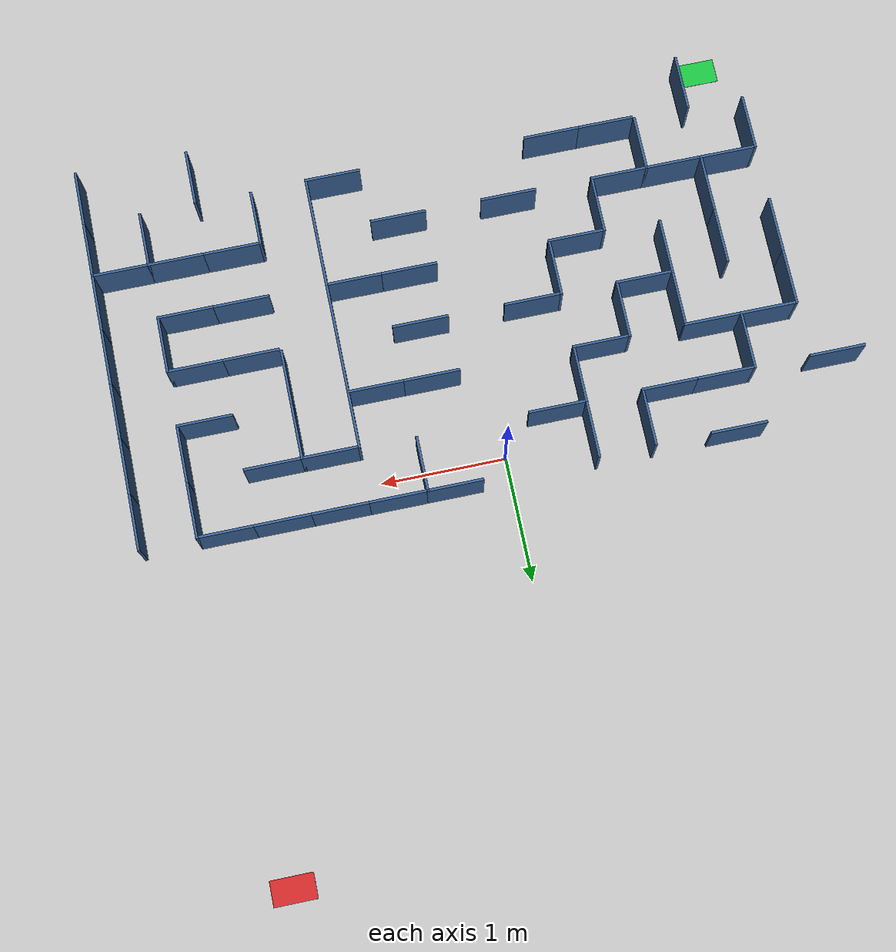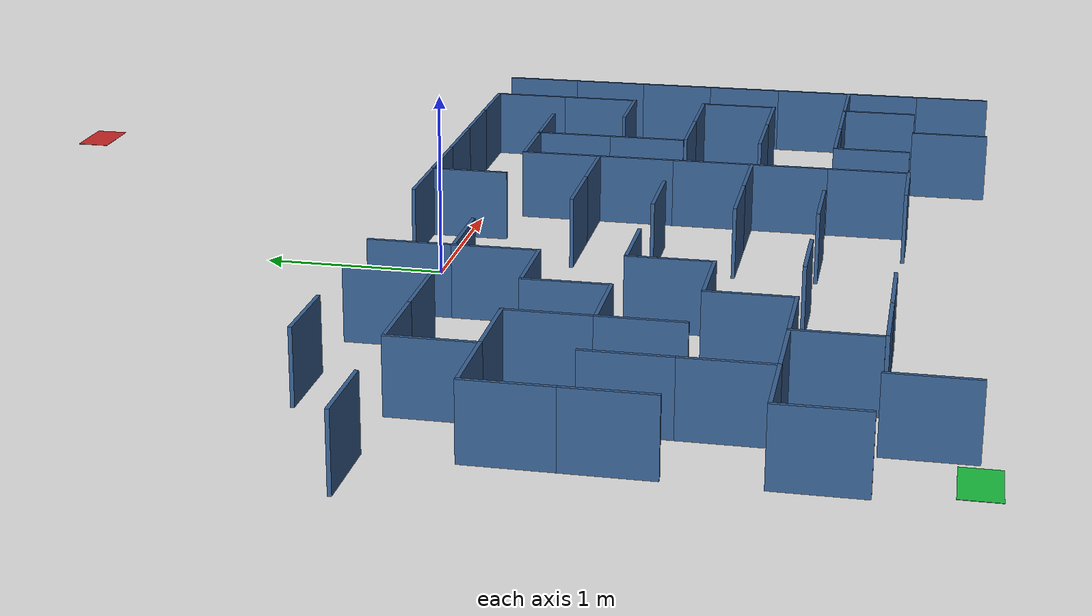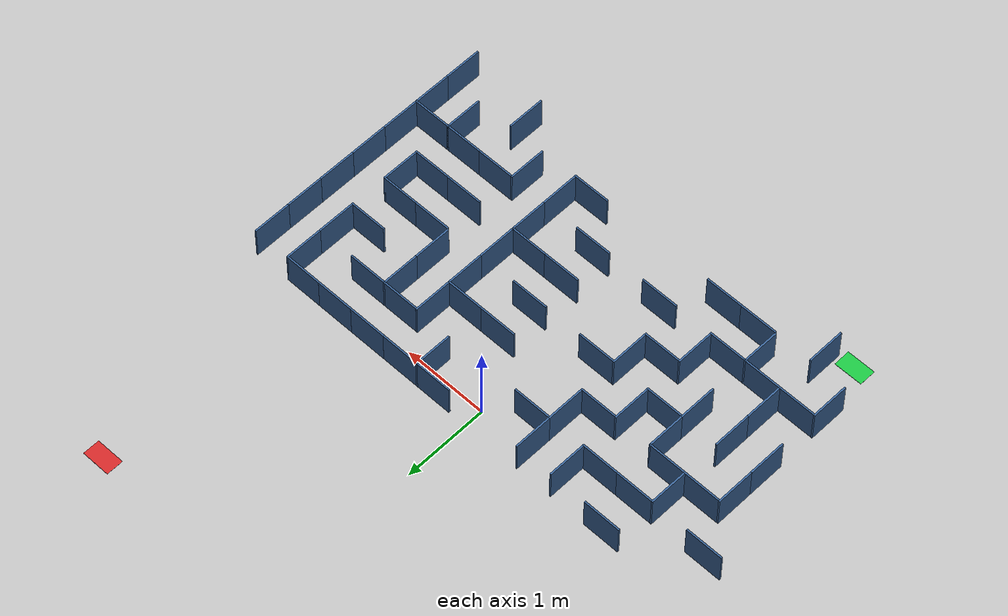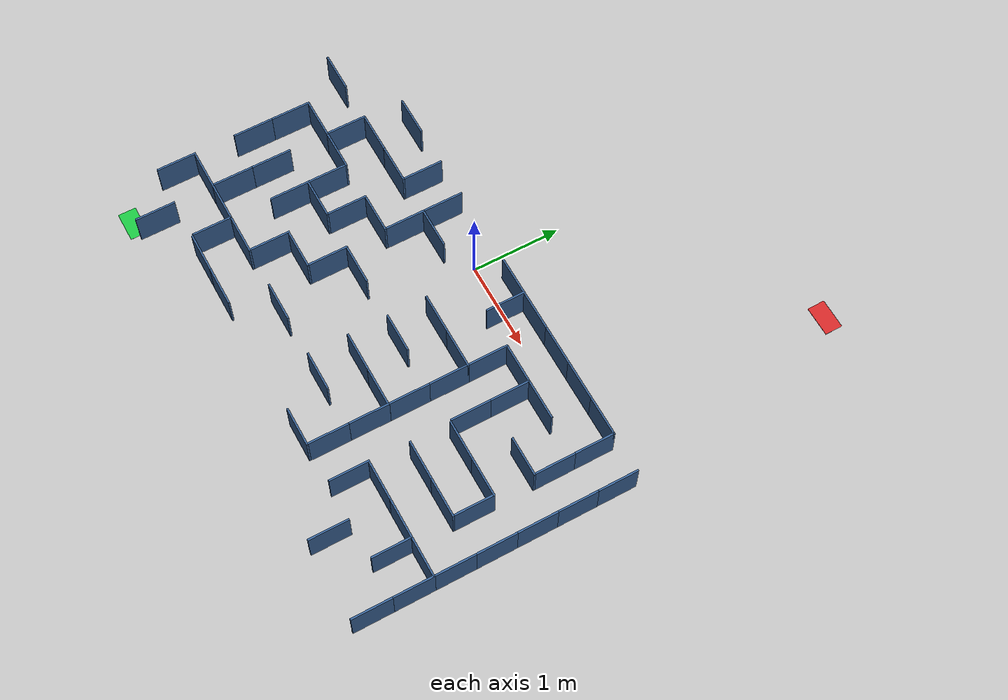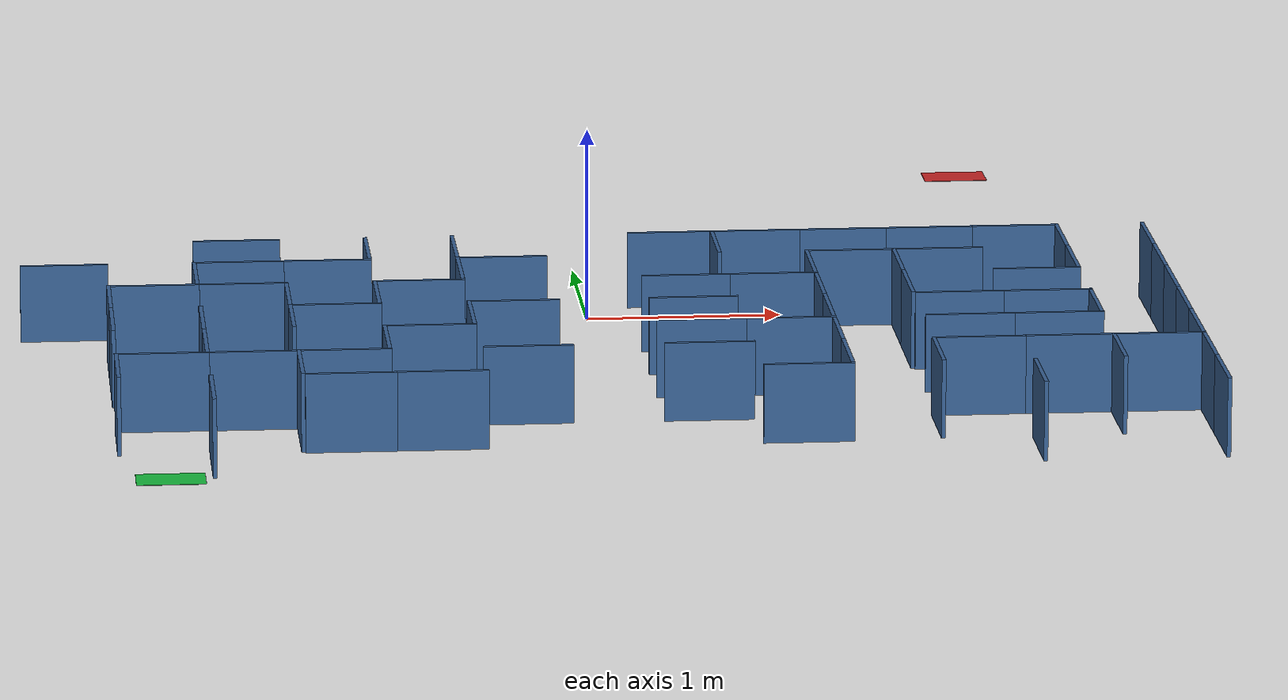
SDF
<sdf version="1.8">
 <world name="maze_world">
  <include><uri>https://fuel.gazebosim.org/1.0/OpenRobotics/models/Sun</uri></include>
  <model name="wall_h_6_2">
   <static>true</static>
   <link name="link">
    <pose>-1.8000000000000003 0.215 0.2 0 0 0</pose>
    <collision name="collision"><geometry><box><size>0.45 0.04 0.4</size></box></geometry></collision>
    <visual name="visual">
     <geometry><box><size>0.45 0.02 0.4</size></box></geometry>
     <material>
      <ambient>0.18 0.32 0.5 1</ambient>
      <diffuse>0.22 0.38 0.58 1</diffuse>
      <specular>0.15 0.15 0.15 1</specular>
     </material>
    </visual>
   </link>
  </model>
  <model name="wall_v_6_3">
   <static>true</static>
   <link name="link">
    <pose>-1.1350000000000002 0.0 0.2 0 0 0</pose>
    <collision name="collision"><geometry><box><size>0.04 0.45 0.4</size></box></geometry></collision>
    <visual name="visual">
     <geometry><box><size>0.02 0.45 0.4</size></box></geometry>
     <material>
      <ambient>0.18 0.32 0.5 1</ambient>
      <diffuse>0.22 0.38 0.58 1</diffuse>
      <specular>0.15 0.15 0.15 1</specular>
     </material>
    </visual>
   </link>
  </model>
  <model name="wall_v_6_4">
   <static>true</static>
   <link name="link">
    <pose>-0.6850000000000004 0.0 0.2 0 0 0</pose>
    <collision name="collision"><geometry><box><size>0.04 0.45 0.4</size></box></geometry></collision>
    <visual name="visual">
     <geometry><box><size>0.02 0.45 0.4</size></box></geometry>
     <material>
      <ambient>0.18 0.32 0.5 1</ambient>
      <diffuse>0.22 0.38 0.58 1</diffuse>
      <specular>0.15 0.15 0.15 1</specular>
     </material>
    </visual>
   </link>
  </model>
  <model name="wall_h_6_7">
   <static>true</static>
   <link name="link">
    <pose>0.44999999999999973 0.215 0.2 0 0 0</pose>
    <collision name="collision"><geometry><box><size>0.45 0.04 0.4</size></box></geometry></collision>
    <visual name="visual">
     <geometry><box><size>0.45 0.02 0.4</size></box></geometry>
     <material>
      <ambient>0.18 0.32 0.5 1</ambient>
      <diffuse>0.22 0.38 0.58 1</diffuse>
      <specular>0.15 0.15 0.15 1</specular>
     </material>
    </visual>
   </link>
  </model>
  <model name="wall_v_6_7">
   <static>true</static>
   <link name="link">
    <pose>0.6649999999999997 0.0 0.2 0 0 0</pose>
    <collision name="collision"><geometry><box><size>0.04 0.45 0.4</size></box></geometry></collision>
    <visual name="visual">
     <geometry><box><size>0.02 0.45 0.4</size></box></geometry>
     <material>
      <ambient>0.18 0.32 0.5 1</ambient>
      <diffuse>0.22 0.38 0.58 1</diffuse>
      <specular>0.15 0.15 0.15 1</specular>
     </material>
    </visual>
   </link>
  </model>
  <model name="wall_h_6_8">
   <static>true</static>
   <link name="link">
    <pose>0.8999999999999999 0.215 0.2 0 0 0</pose>
    <collision name="collision"><geometry><box><size>0.45 0.04 0.4</size></box></geometry></collision>
    <visual name="visual">
     <geometry><box><size>0.45 0.02 0.4</size></box></geometry>
     <material>
      <ambient>0.18 0.32 0.5 1</ambient>
      <diffuse>0.22 0.38 0.58 1</diffuse>
      <specular>0.15 0.15 0.15 1</specular>
     </material>
    </visual>
   </link>
  </model>
  <model name="wall_h_6_9">
   <static>true</static>
   <link name="link">
    <pose>1.35 0.215 0.2 0 0 0</pose>
    <collision name="collision"><geometry><box><size>0.45 0.04 0.4</size></box></geometry></collision>
    <visual name="visual">
     <geometry><box><size>0.45 0.02 0.4</size></box></geometry>
     <material>
      <ambient>0.18 0.32 0.5 1</ambient>
      <diffuse>0.22 0.38 0.58 1</diffuse>
      <specular>0.15 0.15 0.15 1</specular>
     </material>
    </visual>
   </link>
  </model>
  <model name="wall_h_6_10">
   <static>true</static>
   <link name="link">
    <pose>1.8000000000000003 0.215 0.2 0 0 0</pose>
    <collision name="collision"><geometry><box><size>0.45 0.04 0.4</size></box></geometry></collision>
    <visual name="visual">
     <geometry><box><size>0.45 0.02 0.4</size></box></geometry>
     <material>
      <ambient>0.18 0.32 0.5 1</ambient>
      <diffuse>0.22 0.38 0.58 1</diffuse>
      <specular>0.15 0.15 0.15 1</specular>
     </material>
    </visual>
   </link>
  </model>
  <model name="wall_h_6_11">
   <static>true</static>
   <link name="link">
    <pose>2.2499999999999996 0.215 0.2 0 0 0</pose>
    <collision name="collision"><geometry><box><size>0.45 0.04 0.4</size></box></geometry></collision>
    <visual name="visual">
     <geometry><box><size>0.45 0.02 0.4</size></box></geometry>
     <material>
      <ambient>0.18 0.32 0.5 1</ambient>
      <diffuse>0.22 0.38 0.58 1</diffuse>
      <specular>0.15 0.15 0.15 1</specular>
     </material>
    </visual>
   </link>
  </model>
  <model name="wall_v_6_11">
   <static>true</static>
   <link name="link">
    <pose>2.465 0.0 0.2 0 0 0</pose>
    <collision name="collision"><geometry><box><size>0.04 0.45 0.4</size></box></geometry></collision>
    <visual name="visual">
     <geometry><box><size>0.02 0.45 0.4</size></box></geometry>
     <material>
      <ambient>0.18 0.32 0.5 1</ambient>
      <diffuse>0.22 0.38 0.58 1</diffuse>
      <specular>0.15 0.15 0.15 1</specular>
     </material>
    </visual>
   </link>
  </model>
  <model name="wall_v_6_12">
   <static>true</static>
   <link name="link">
    <pose>2.915 0.0 0.2 0 0 0</pose>
    <collision name="collision"><geometry><box><size>0.04 0.45 0.4</size></box></geometry></collision>
    <visual name="visual">
     <geometry><box><size>0.02 0.45 0.4</size></box></geometry>
     <material>
      <ambient>0.18 0.32 0.5 1</ambient>
      <diffuse>0.22 0.38 0.58 1</diffuse>
      <specular>0.15 0.15 0.15 1</specular>
     </material>
    </visual>
   </link>
  </model>
  <model name="wall_h_7_0">
   <static>true</static>
   <link name="link">
    <pose>-2.7 -0.23499999999999974 0.2 0 0 0</pose>
    <collision name="collision"><geometry><box><size>0.45 0.04 0.4</size></box></geometry></collision>
    <visual name="visual">
     <geometry><box><size>0.45 0.02 0.4</size></box></geometry>
     <material>
      <ambient>0.18 0.32 0.5 1</ambient>
      <diffuse>0.22 0.38 0.58 1</diffuse>
      <specular>0.15 0.15 0.15 1</specular>
     </material>
    </visual>
   </link>
  </model>
  <model name="wall_v_7_1">
   <static>true</static>
   <link name="link">
    <pose>-2.0349999999999997 -0.44999999999999973 0.2 0 0 0</pose>
    <collision name="collision"><geometry><box><size>0.04 0.45 0.4</size></box></geometry></collision>
    <visual name="visual">
     <geometry><box><size>0.02 0.45 0.4</size></box></geometry>
     <material>
      <ambient>0.18 0.32 0.5 1</ambient>
      <diffuse>0.22 0.38 0.58 1</diffuse>
      <specular>0.15 0.15 0.15 1</specular>
     </material>
    </visual>
   </link>
  </model>
  <model name="wall_h_7_2">
   <static>true</static>
   <link name="link">
    <pose>-1.8000000000000003 -0.23499999999999974 0.2 0 0 0</pose>
    <collision name="collision"><geometry><box><size>0.45 0.04 0.4</size></box></geometry></collision>
    <visual name="visual">
     <geometry><box><size>0.45 0.02 0.4</size></box></geometry>
     <material>
      <ambient>0.18 0.32 0.5 1</ambient>
      <diffuse>0.22 0.38 0.58 1</diffuse>
      <specular>0.15 0.15 0.15 1</specular>
     </material>
    </visual>
   </link>
  </model>
  <model name="wall_h_7_3">
   <static>true</static>
   <link name="link">
    <pose>-1.3500000000000003 -0.23499999999999974 0.2 0 0 0</pose>
    <collision name="collision"><geometry><box><size>0.45 0.04 0.4</size></box></geometry></collision>
    <visual name="visual">
     <geometry><box><size>0.45 0.02 0.4</size></box></geometry>
     <material>
      <ambient>0.18 0.32 0.5 1</ambient>
      <diffuse>0.22 0.38 0.58 1</diffuse>
      <specular>0.15 0.15 0.15 1</specular>
     </material>
    </visual>
   </link>
  </model>
  <model name="wall_v_7_4">
   <static>true</static>
   <link name="link">
    <pose>-0.6850000000000004 -0.44999999999999973 0.2 0 0 0</pose>
    <collision name="collision"><geometry><box><size>0.04 0.45 0.4</size></box></geometry></collision>
    <visual name="visual">
     <geometry><box><size>0.02 0.45 0.4</size></box></geometry>
     <material>
      <ambient>0.18 0.32 0.5 1</ambient>
      <diffuse>0.22 0.38 0.58 1</diffuse>
      <specular>0.15 0.15 0.15 1</specular>
     </material>
    </visual>
   </link>
  </model>
  <model name="wall_h_7_5">
   <static>true</static>
   <link name="link">
    <pose>-0.4500000000000002 -0.23499999999999974 0.2 0 0 0</pose>
    <collision name="collision"><geometry><box><size>0.45 0.04 0.4</size></box></geometry></collision>
    <visual name="visual">
     <geometry><box><size>0.45 0.02 0.4</size></box></geometry>
     <material>
      <ambient>0.18 0.32 0.5 1</ambient>
      <diffuse>0.22 0.38 0.58 1</diffuse>
      <specular>0.15 0.15 0.15 1</specular>
     </material>
    </visual>
   </link>
  </model>
  <model name="wall_v_7_8">
   <static>true</static>
   <link name="link">
    <pose>1.115 -0.44999999999999973 0.2 0 0 0</pose>
    <collision name="collision"><geometry><box><size>0.04 0.45 0.4</size></box></geometry></collision>
    <visual name="visual">
     <geometry><box><size>0.02 0.45 0.4</size></box></geometry>
     <material>
      <ambient>0.18 0.32 0.5 1</ambient>
      <diffuse>0.22 0.38 0.58 1</diffuse>
      <specular>0.15 0.15 0.15 1</specular>
     </material>
    </visual>
   </link>
  </model>
  <model name="wall_h_7_9">
   <static>true</static>
   <link name="link">
    <pose>1.35 -0.23499999999999974 0.2 0 0 0</pose>
    <collision name="collision"><geometry><box><size>0.45 0.04 0.4</size></box></geometry></collision>
    <visual name="visual">
     <geometry><box><size>0.45 0.02 0.4</size></box></geometry>
     <material>
      <ambient>0.18 0.32 0.5 1</ambient>
      <diffuse>0.22 0.38 0.58 1</diffuse>
      <specular>0.15 0.15 0.15 1</specular>
     </material>
    </visual>
   </link>
  </model>
  <model name="wall_v_7_9">
   <static>true</static>
   <link name="link">
    <pose>1.5650000000000002 -0.44999999999999973 0.2 0 0 0</pose>
    <collision name="collision"><geometry><box><size>0.04 0.45 0.4</size></box></geometry></collision>
    <visual name="visual">
     <geometry><box><size>0.02 0.45 0.4</size></box></geometry>
     <material>
      <ambient>0.18 0.32 0.5 1</ambient>
      <diffuse>0.22 0.38 0.58 1</diffuse>
      <specular>0.15 0.15 0.15 1</specular>
     </material>
    </visual>
   </link>
  </model>
  <model name="wall_h_7_10">
   <static>true</static>
   <link name="link">
    <pose>1.8000000000000003 -0.23499999999999974 0.2 0 0 0</pose>
    <collision name="collision"><geometry><box><size>0.45 0.04 0.4</size></box></geometry></collision>
    <visual name="visual">
     <geometry><box><size>0.45 0.02 0.4</size></box></geometry>
     <material>
      <ambient>0.18 0.32 0.5 1</ambient>
      <diffuse>0.22 0.38 0.58 1</diffuse>
      <specular>0.15 0.15 0.15 1</specular>
     </material>
    </visual>
   </link>
  </model>
  <model name="wall_v_7_11">
   <static>true</static>
   <link name="link">
    <pose>2.465 -0.44999999999999973 0.2 0 0 0</pose>
    <collision name="collision"><geometry><box><size>0.04 0.45 0.4</size></box></geometry></collision>
    <visual name="visual">
     <geometry><box><size>0.02 0.45 0.4</size></box></geometry>
     <material>
      <ambient>0.18 0.32 0.5 1</ambient>
      <diffuse>0.22 0.38 0.58 1</diffuse>
      <specular>0.15 0.15 0.15 1</specular>
     </material>
    </visual>
   </link>
  </model>
  <model name="wall_v_7_12">
   <static>true</static>
   <link name="link">
    <pose>2.915 -0.44999999999999973 0.2 0 0 0</pose>
    <collision name="collision"><geometry><box><size>0.04 0.45 0.4</size></box></geometry></collision>
    <visual name="visual">
     <geometry><box><size>0.02 0.45 0.4</size></box></geometry>
     <material>
      <ambient>0.18 0.32 0.5 1</ambient>
      <diffuse>0.22 0.38 0.58 1</diffuse>
      <specular>0.15 0.15 0.15 1</specular>
     </material>
    </visual>
   </link>
  </model>
  <model name="wall_v_8_0">
   <static>true</static>
   <link name="link">
    <pose>-2.485 -0.8999999999999999 0.2 0 0 0</pose>
    <collision name="collision"><geometry><box><size>0.04 0.45 0.4</size></box></geometry></collision>
    <visual name="visual">
     <geometry><box><size>0.02 0.45 0.4</size></box></geometry>
     <material>
      <ambient>0.18 0.32 0.5 1</ambient>
      <diffuse>0.22 0.38 0.58 1</diffuse>
      <specular>0.15 0.15 0.15 1</specular>
     </material>
    </visual>
   </link>
  </model>
  <model name="wall_h_8_1">
   <static>true</static>
   <link name="link">
    <pose>-2.25 -0.6849999999999999 0.2 0 0 0</pose>
    <collision name="collision"><geometry><box><size>0.45 0.04 0.4</size></box></geometry></collision>
    <visual name="visual">
     <geometry><box><size>0.45 0.02 0.4</size></box></geometry>
     <material>
      <ambient>0.18 0.32 0.5 1</ambient>
      <diffuse>0.22 0.38 0.58 1</diffuse>
      <specular>0.15 0.15 0.15 1</specular>
     </material>
    </visual>
   </link>
  </model>
  <model name="wall_h_8_2">
   <static>true</static>
   <link name="link">
    <pose>-1.8000000000000003 -0.6849999999999999 0.2 0 0 0</pose>
    <collision name="collision"><geometry><box><size>0.45 0.04 0.4</size></box></geometry></collision>
    <visual name="visual">
     <geometry><box><size>0.45 0.02 0.4</size></box></geometry>
     <material>
      <ambient>0.18 0.32 0.5 1</ambient>
      <diffuse>0.22 0.38 0.58 1</diffuse>
      <specular>0.15 0.15 0.15 1</specular>
     </material>
    </visual>
   </link>
  </model>
  <model name="wall_v_8_2">
   <static>true</static>
   <link name="link">
    <pose>-1.5850000000000002 -0.8999999999999999 0.2 0 0 0</pose>
    <collision name="collision"><geometry><box><size>0.04 0.45 0.4</size></box></geometry></collision>
    <visual name="visual">
     <geometry><box><size>0.02 0.45 0.4</size></box></geometry>
     <material>
      <ambient>0.18 0.32 0.5 1</ambient>
      <diffuse>0.22 0.38 0.58 1</diffuse>
      <specular>0.15 0.15 0.15 1</specular>
     </material>
    </visual>
   </link>
  </model>
  <model name="wall_v_8_3">
   <static>true</static>
   <link name="link">
    <pose>-1.1350000000000002 -0.8999999999999999 0.2 0 0 0</pose>
    <collision name="collision"><geometry><box><size>0.04 0.45 0.4</size></box></geometry></collision>
    <visual name="visual">
     <geometry><box><size>0.02 0.45 0.4</size></box></geometry>
     <material>
      <ambient>0.18 0.32 0.5 1</ambient>
      <diffuse>0.22 0.38 0.58 1</diffuse>
      <specular>0.15 0.15 0.15 1</specular>
     </material>
    </visual>
   </link>
  </model>
  <model name="wall_h_8_4">
   <static>true</static>
   <link name="link">
    <pose>-0.9000000000000004 -0.6849999999999999 0.2 0 0 0</pose>
    <collision name="collision"><geometry><box><size>0.45 0.04 0.4</size></box></geometry></collision>
    <visual name="visual">
     <geometry><box><size>0.45 0.02 0.4</size></box></geometry>
     <material>
      <ambient>0.18 0.32 0.5 1</ambient>
      <diffuse>0.22 0.38 0.58 1</diffuse>
      <specular>0.15 0.15 0.15 1</specular>
     </material>
    </visual>
   </link>
  </model>
  <model name="wall_h_8_7">
   <static>true</static>
   <link name="link">
    <pose>0.44999999999999973 -0.6849999999999999 0.2 0 0 0</pose>
    <collision name="collision"><geometry><box><size>0.45 0.04 0.4</size></box></geometry></collision>
    <visual name="visual">
     <geometry><box><size>0.45 0.02 0.4</size></box></geometry>
     <material>
      <ambient>0.18 0.32 0.5 1</ambient>
      <diffuse>0.22 0.38 0.58 1</diffuse>
      <specular>0.15 0.15 0.15 1</specular>
     </material>
    </visual>
   </link>
  </model>
  <model name="wall_h_8_8">
   <static>true</static>
   <link name="link">
    <pose>0.8999999999999999 -0.6849999999999999 0.2 0 0 0</pose>
    <collision name="collision"><geometry><box><size>0.45 0.04 0.4</size></box></geometry></collision>
    <visual name="visual">
     <geometry><box><size>0.45 0.02 0.4</size></box></geometry>
     <material>
      <ambient>0.18 0.32 0.5 1</ambient>
      <diffuse>0.22 0.38 0.58 1</diffuse>
      <specular>0.15 0.15 0.15 1</specular>
     </material>
    </visual>
   </link>
  </model>
  <model name="wall_v_8_8">
   <static>true</static>
   <link name="link">
    <pose>1.115 -0.8999999999999999 0.2 0 0 0</pose>
    <collision name="collision"><geometry><box><size>0.04 0.45 0.4</size></box></geometry></collision>
    <visual name="visual">
     <geometry><box><size>0.02 0.45 0.4</size></box></geometry>
     <material>
      <ambient>0.18 0.32 0.5 1</ambient>
      <diffuse>0.22 0.38 0.58 1</diffuse>
      <specular>0.15 0.15 0.15 1</specular>
     </material>
    </visual>
   </link>
  </model>
  <model name="wall_v_8_9">
   <static>true</static>
   <link name="link">
    <pose>1.5650000000000002 -0.8999999999999999 0.2 0 0 0</pose>
    <collision name="collision"><geometry><box><size>0.04 0.45 0.4</size></box></geometry></collision>
    <visual name="visual">
     <geometry><box><size>0.02 0.45 0.4</size></box></geometry>
     <material>
      <ambient>0.18 0.32 0.5 1</ambient>
      <diffuse>0.22 0.38 0.58 1</diffuse>
      <specular>0.15 0.15 0.15 1</specular>
     </material>
    </visual>
   </link>
  </model>
  <model name="wall_h_8_11">
   <static>true</static>
   <link name="link">
    <pose>2.2499999999999996 -0.6849999999999999 0.2 0 0 0</pose>
    <collision name="collision"><geometry><box><size>0.45 0.04 0.4</size></box></geometry></collision>
    <visual name="visual">
     <geometry><box><size>0.45 0.02 0.4</size></box></geometry>
     <material>
      <ambient>0.18 0.32 0.5 1</ambient>
      <diffuse>0.22 0.38 0.58 1</diffuse>
      <specular>0.15 0.15 0.15 1</specular>
     </material>
    </visual>
   </link>
  </model>
  <model name="wall_v_8_12">
   <static>true</static>
   <link name="link">
    <pose>2.915 -0.8999999999999999 0.2 0 0 0</pose>
    <collision name="collision"><geometry><box><size>0.04 0.45 0.4</size></box></geometry></collision>
    <visual name="visual">
     <geometry><box><size>0.02 0.45 0.4</size></box></geometry>
     <material>
      <ambient>0.18 0.32 0.5 1</ambient>
      <diffuse>0.22 0.38 0.58 1</diffuse>
      <specular>0.15 0.15 0.15 1</specular>
     </material>
    </visual>
   </link>
  </model>
  <model name="wall_v_9_0">
   <static>true</static>
   <link name="link">
    <pose>-2.485 -1.35 0.2 0 0 0</pose>
    <collision name="collision"><geometry><box><size>0.04 0.45 0.4</size></box></geometry></collision>
    <visual name="visual">
     <geometry><box><size>0.02 0.45 0.4</size></box></geometry>
     <material>
      <ambient>0.18 0.32 0.5 1</ambient>
      <diffuse>0.22 0.38 0.58 1</diffuse>
      <specular>0.15 0.15 0.15 1</specular>
     </material>
    </visual>
   </link>
  </model>
  <model name="wall_v_9_1">
   <static>true</static>
   <link name="link">
    <pose>-2.0349999999999997 -1.35 0.2 0 0 0</pose>
    <collision name="collision"><geometry><box><size>0.04 0.45 0.4</size></box></geometry></collision>
    <visual name="visual">
     <geometry><box><size>0.02 0.45 0.4</size></box></geometry>
     <material>
      <ambient>0.18 0.32 0.5 1</ambient>
      <diffuse>0.22 0.38 0.58 1</diffuse>
      <specular>0.15 0.15 0.15 1</specular>
     </material>
    </visual>
   </link>
  </model>
  <model name="wall_v_9_2">
   <static>true</static>
   <link name="link">
    <pose>-1.5850000000000002 -1.35 0.2 0 0 0</pose>
    <collision name="collision"><geometry><box><size>0.04 0.45 0.4</size></box></geometry></collision>
    <visual name="visual">
     <geometry><box><size>0.02 0.45 0.4</size></box></geometry>
     <material>
      <ambient>0.18 0.32 0.5 1</ambient>
      <diffuse>0.22 0.38 0.58 1</diffuse>
      <specular>0.15 0.15 0.15 1</specular>
     </material>
    </visual>
   </link>
  </model>
  <model name="wall_h_9_3">
   <static>true</static>
   <link name="link">
    <pose>-1.3500000000000003 -1.135 0.2 0 0 0</pose>
    <collision name="collision"><geometry><box><size>0.45 0.04 0.4</size></box></geometry></collision>
    <visual name="visual">
     <geometry><box><size>0.45 0.02 0.4</size></box></geometry>
     <material>
      <ambient>0.18 0.32 0.5 1</ambient>
      <diffuse>0.22 0.38 0.58 1</diffuse>
      <specular>0.15 0.15 0.15 1</specular>
     </material>
    </visual>
   </link>
  </model>
  <model name="wall_v_9_4">
   <static>true</static>
   <link name="link">
    <pose>-0.6850000000000004 -1.35 0.2 0 0 0</pose>
    <collision name="collision"><geometry><box><size>0.04 0.45 0.4</size></box></geometry></collision>
    <visual name="visual">
     <geometry><box><size>0.02 0.45 0.4</size></box></geometry>
     <material>
      <ambient>0.18 0.32 0.5 1</ambient>
      <diffuse>0.22 0.38 0.58 1</diffuse>
      <specular>0.15 0.15 0.15 1</specular>
     </material>
    </visual>
   </link>
  </model>
  <model name="wall_h_9_5">
   <static>true</static>
   <link name="link">
    <pose>-0.4500000000000002 -1.135 0.2 0 0 0</pose>
    <collision name="collision"><geometry><box><size>0.45 0.04 0.4</size></box></geometry></collision>
    <visual name="visual">
     <geometry><box><size>0.45 0.02 0.4</size></box></geometry>
     <material>
      <ambient>0.18 0.32 0.5 1</ambient>
      <diffuse>0.22 0.38 0.58 1</diffuse>
      <specular>0.15 0.15 0.15 1</specular>
     </material>
    </visual>
   </link>
  </model>
  <model name="wall_h_9_7">
   <static>true</static>
   <link name="link">
    <pose>0.44999999999999973 -1.135 0.2 0 0 0</pose>
    <collision name="collision"><geometry><box><size>0.45 0.04 0.4</size></box></geometry></collision>
    <visual name="visual">
     <geometry><box><size>0.45 0.02 0.4</size></box></geometry>
     <material>
      <ambient>0.18 0.32 0.5 1</ambient>
      <diffuse>0.22 0.38 0.58 1</diffuse>
      <specular>0.15 0.15 0.15 1</specular>
     </material>
    </visual>
   </link>
  </model>
  <model name="wall_v_9_8">
   <static>true</static>
   <link name="link">
    <pose>1.115 -1.35 0.2 0 0 0</pose>
    <collision name="collision"><geometry><box><size>0.04 0.45 0.4</size></box></geometry></collision>
    <visual name="visual">
     <geometry><box><size>0.02 0.45 0.4</size></box></geometry>
     <material>
      <ambient>0.18 0.32 0.5 1</ambient>
      <diffuse>0.22 0.38 0.58 1</diffuse>
      <specular>0.15 0.15 0.15 1</specular>
     </material>
    </visual>
   </link>
  </model>
  <model name="wall_h_9_10">
   <static>true</static>
   <link name="link">
    <pose>1.8000000000000003 -1.135 0.2 0 0 0</pose>
    <collision name="collision"><geometry><box><size>0.45 0.04 0.4</size></box></geometry></collision>
    <visual name="visual">
     <geometry><box><size>0.45 0.02 0.4</size></box></geometry>
     <material>
      <ambient>0.18 0.32 0.5 1</ambient>
      <diffuse>0.22 0.38 0.58 1</diffuse>
      <specular>0.15 0.15 0.15 1</specular>
     </material>
    </visual>
   </link>
  </model>
  <model name="wall_h_9_11">
   <static>true</static>
   <link name="link">
    <pose>2.2499999999999996 -1.135 0.2 0 0 0</pose>
    <collision name="collision"><geometry><box><size>0.45 0.04 0.4</size></box></geometry></collision>
    <visual name="visual">
     <geometry><box><size>0.45 0.02 0.4</size></box></geometry>
     <material>
      <ambient>0.18 0.32 0.5 1</ambient>
      <diffuse>0.22 0.38 0.58 1</diffuse>
      <specular>0.15 0.15 0.15 1</specular>
     </material>
    </visual>
   </link>
  </model>
  <model name="wall_v_9_11">
   <static>true</static>
   <link name="link">
    <pose>2.465 -1.35 0.2 0 0 0</pose>
    <collision name="collision"><geometry><box><size>0.04 0.45 0.4</size></box></geometry></collision>
    <visual name="visual">
     <geometry><box><size>0.02 0.45 0.4</size></box></geometry>
     <material>
      <ambient>0.18 0.32 0.5 1</ambient>
      <diffuse>0.22 0.38 0.58 1</diffuse>
      <specular>0.15 0.15 0.15 1</specular>
     </material>
    </visual>
   </link>
  </model>
  <model name="wall_v_9_12">
   <static>true</static>
   <link name="link">
    <pose>2.915 -1.35 0.2 0 0 0</pose>
    <collision name="collision"><geometry><box><size>0.04 0.45 0.4</size></box></geometry></collision>
    <visual name="visual">
     <geometry><box><size>0.02 0.45 0.4</size></box></geometry>
     <material>
      <ambient>0.18 0.32 0.5 1</ambient>
      <diffuse>0.22 0.38 0.58 1</diffuse>
      <specular>0.15 0.15 0.15 1</specular>
     </material>
    </visual>
   </link>
  </model>
  <model name="wall_v_10_1">
   <static>true</static>
   <link name="link">
    <pose>-2.0349999999999997 -1.8000000000000003 0.2 0 0 0</pose>
    <collision name="collision"><geometry><box><size>0.04 0.45 0.4</size></box></geometry></collision>
    <visual name="visual">
     <geometry><box><size>0.02 0.45 0.4</size></box></geometry>
     <material>
      <ambient>0.18 0.32 0.5 1</ambient>
      <diffuse>0.22 0.38 0.58 1</diffuse>
      <specular>0.15 0.15 0.15 1</specular>
     </material>
    </visual>
   </link>
  </model>
  <model name="wall_v_10_3">
   <static>true</static>
   <link name="link">
    <pose>-1.1350000000000002 -1.8000000000000003 0.2 0 0 0</pose>
    <collision name="collision"><geometry><box><size>0.04 0.45 0.4</size></box></geometry></collision>
    <visual name="visual">
     <geometry><box><size>0.02 0.45 0.4</size></box></geometry>
     <material>
      <ambient>0.18 0.32 0.5 1</ambient>
      <diffuse>0.22 0.38 0.58 1</diffuse>
      <specular>0.15 0.15 0.15 1</specular>
     </material>
    </visual>
   </link>
  </model>
  <model name="wall_h_10_4">
   <static>true</static>
   <link name="link">
    <pose>-0.9000000000000004 -1.5850000000000002 0.2 0 0 0</pose>
    <collision name="collision"><geometry><box><size>0.45 0.04 0.4</size></box></geometry></collision>
    <visual name="visual">
     <geometry><box><size>0.45 0.02 0.4</size></box></geometry>
     <material>
      <ambient>0.18 0.32 0.5 1</ambient>
      <diffuse>0.22 0.38 0.58 1</diffuse>
      <specular>0.15 0.15 0.15 1</specular>
     </material>
    </visual>
   </link>
  </model>
  <model name="wall_h_10_7">
   <static>true</static>
   <link name="link">
    <pose>0.44999999999999973 -1.5850000000000002 0.2 0 0 0</pose>
    <collision name="collision"><geometry><box><size>0.45 0.04 0.4</size></box></geometry></collision>
    <visual name="visual">
     <geometry><box><size>0.45 0.02 0.4</size></box></geometry>
     <material>
      <ambient>0.18 0.32 0.5 1</ambient>
      <diffuse>0.22 0.38 0.58 1</diffuse>
      <specular>0.15 0.15 0.15 1</specular>
     </material>
    </visual>
   </link>
  </model>
  <model name="wall_h_10_8">
   <static>true</static>
   <link name="link">
    <pose>0.8999999999999999 -1.5850000000000002 0.2 0 0 0</pose>
    <collision name="collision"><geometry><box><size>0.45 0.04 0.4</size></box></geometry></collision>
    <visual name="visual">
     <geometry><box><size>0.45 0.02 0.4</size></box></geometry>
     <material>
      <ambient>0.18 0.32 0.5 1</ambient>
      <diffuse>0.22 0.38 0.58 1</diffuse>
      <specular>0.15 0.15 0.15 1</specular>
     </material>
    </visual>
   </link>
  </model>
  <model name="wall_v_10_8">
   <static>true</static>
   <link name="link">
    <pose>1.115 -1.8000000000000003 0.2 0 0 0</pose>
    <collision name="collision"><geometry><box><size>0.04 0.45 0.4</size></box></geometry></collision>
    <visual name="visual">
     <geometry><box><size>0.02 0.45 0.4</size></box></geometry>
     <material>
      <ambient>0.18 0.32 0.5 1</ambient>
      <diffuse>0.22 0.38 0.58 1</diffuse>
      <specular>0.15 0.15 0.15 1</specular>
     </material>
    </visual>
   </link>
  </model>
  <model name="wall_h_10_10">
   <static>true</static>
   <link name="link">
    <pose>1.8000000000000003 -1.5850000000000002 0.2 0 0 0</pose>
    <collision name="collision"><geometry><box><size>0.45 0.04 0.4</size></box></geometry></collision>
    <visual name="visual">
     <geometry><box><size>0.45 0.02 0.4</size></box></geometry>
     <material>
      <ambient>0.18 0.32 0.5 1</ambient>
      <diffuse>0.22 0.38 0.58 1</diffuse>
      <specular>0.15 0.15 0.15 1</specular>
     </material>
    </visual>
   </link>
  </model>
  <model name="wall_h_10_11">
   <static>true</static>
   <link name="link">
    <pose>2.2499999999999996 -1.5850000000000002 0.2 0 0 0</pose>
    <collision name="collision"><geometry><box><size>0.45 0.04 0.4</size></box></geometry></collision>
    <visual name="visual">
     <geometry><box><size>0.45 0.02 0.4</size></box></geometry>
     <material>
      <ambient>0.18 0.32 0.5 1</ambient>
      <diffuse>0.22 0.38 0.58 1</diffuse>
      <specular>0.15 0.15 0.15 1</specular>
     </material>
    </visual>
   </link>
  </model>
  <model name="wall_v_10_12">
   <static>true</static>
   <link name="link">
    <pose>2.915 -1.8000000000000003 0.2 0 0 0</pose>
    <collision name="collision"><geometry><box><size>0.04 0.45 0.4</size></box></geometry></collision>
    <visual name="visual">
     <geometry><box><size>0.02 0.45 0.4</size></box></geometry>
     <material>
      <ambient>0.18 0.32 0.5 1</ambient>
      <diffuse>0.22 0.38 0.58 1</diffuse>
      <specular>0.15 0.15 0.15 1</specular>
     </material>
    </visual>
   </link>
  </model>
  <model name="wall_v_11_0">
   <static>true</static>
   <link name="link">
    <pose>-2.485 -2.2499999999999996 0.2 0 0 0</pose>
    <collision name="collision"><geometry><box><size>0.04 0.45 0.4</size></box></geometry></collision>
    <visual name="visual">
     <geometry><box><size>0.02 0.45 0.4</size></box></geometry>
     <material>
      <ambient>0.18 0.32 0.5 1</ambient>
      <diffuse>0.22 0.38 0.58 1</diffuse>
      <specular>0.15 0.15 0.15 1</specular>
     </material>
    </visual>
   </link>
  </model>
  <model name="wall_h_11_1">
   <static>true</static>
   <link name="link">
    <pose>-2.25 -2.0349999999999993 0.2 0 0 0</pose>
    <collision name="collision"><geometry><box><size>0.45 0.04 0.4</size></box></geometry></collision>
    <visual name="visual">
     <geometry><box><size>0.45 0.02 0.4</size></box></geometry>
     <material>
      <ambient>0.18 0.32 0.5 1</ambient>
      <diffuse>0.22 0.38 0.58 1</diffuse>
      <specular>0.15 0.15 0.15 1</specular>
     </material>
    </visual>
   </link>
  </model>
  <model name="wall_h_11_2">
   <static>true</static>
   <link name="link">
    <pose>-1.8000000000000003 -2.0349999999999993 0.2 0 0 0</pose>
    <collision name="collision"><geometry><box><size>0.45 0.04 0.4</size></box></geometry></collision>
    <visual name="visual">
     <geometry><box><size>0.45 0.02 0.4</size></box></geometry>
     <material>
      <ambient>0.18 0.32 0.5 1</ambient>
      <diffuse>0.22 0.38 0.58 1</diffuse>
      <specular>0.15 0.15 0.15 1</specular>
     </material>
    </visual>
   </link>
  </model>
  <model name="wall_v_11_2">
   <static>true</static>
   <link name="link">
    <pose>-1.5850000000000002 -2.2499999999999996 0.2 0 0 0</pose>
    <collision name="collision"><geometry><box><size>0.04 0.45 0.4</size></box></geometry></collision>
    <visual name="visual">
     <geometry><box><size>0.02 0.45 0.4</size></box></geometry>
     <material>
      <ambient>0.18 0.32 0.5 1</ambient>
      <diffuse>0.22 0.38 0.58 1</diffuse>
      <specular>0.15 0.15 0.15 1</specular>
     </material>
    </visual>
   </link>
  </model>
  <model name="wall_h_11_3">
   <static>true</static>
   <link name="link">
    <pose>-1.3500000000000003 -2.0349999999999993 0.2 0 0 0</pose>
    <collision name="collision"><geometry><box><size>0.45 0.04 0.4</size></box></geometry></collision>
    <visual name="visual">
     <geometry><box><size>0.45 0.02 0.4</size></box></geometry>
     <material>
      <ambient>0.18 0.32 0.5 1</ambient>
      <diffuse>0.22 0.38 0.58 1</diffuse>
      <specular>0.15 0.15 0.15 1</specular>
     </material>
    </visual>
   </link>
  </model>
  <model name="wall_h_11_5">
   <static>true</static>
   <link name="link">
    <pose>-0.4500000000000002 -2.0349999999999993 0.2 0 0 0</pose>
    <collision name="collision"><geometry><box><size>0.45 0.04 0.4</size></box></geometry></collision>
    <visual name="visual">
     <geometry><box><size>0.45 0.02 0.4</size></box></geometry>
     <material>
      <ambient>0.18 0.32 0.5 1</ambient>
      <diffuse>0.22 0.38 0.58 1</diffuse>
      <specular>0.15 0.15 0.15 1</specular>
     </material>
    </visual>
   </link>
  </model>
  <model name="wall_h_11_7">
   <static>true</static>
   <link name="link">
    <pose>0.44999999999999973 -2.0349999999999993 0.2 0 0 0</pose>
    <collision name="collision"><geometry><box><size>0.45 0.04 0.4</size></box></geometry></collision>
    <visual name="visual">
     <geometry><box><size>0.45 0.02 0.4</size></box></geometry>
     <material>
      <ambient>0.18 0.32 0.5 1</ambient>
      <diffuse>0.22 0.38 0.58 1</diffuse>
      <specular>0.15 0.15 0.15 1</specular>
     </material>
    </visual>
   </link>
  </model>
  <model name="wall_v_11_8">
   <static>true</static>
   <link name="link">
    <pose>1.115 -2.2499999999999996 0.2 0 0 0</pose>
    <collision name="collision"><geometry><box><size>0.04 0.45 0.4</size></box></geometry></collision>
    <visual name="visual">
     <geometry><box><size>0.02 0.45 0.4</size></box></geometry>
     <material>
      <ambient>0.18 0.32 0.5 1</ambient>
      <diffuse>0.22 0.38 0.58 1</diffuse>
      <specular>0.15 0.15 0.15 1</specular>
     </material>
    </visual>
   </link>
  </model>
  <model name="wall_v_11_9">
   <static>true</static>
   <link name="link">
    <pose>1.5650000000000002 -2.2499999999999996 0.2 0 0 0</pose>
    <collision name="collision"><geometry><box><size>0.04 0.45 0.4</size></box></geometry></collision>
    <visual name="visual">
     <geometry><box><size>0.02 0.45 0.4</size></box></geometry>
     <material>
      <ambient>0.18 0.32 0.5 1</ambient>
      <diffuse>0.22 0.38 0.58 1</diffuse>
      <specular>0.15 0.15 0.15 1</specular>
     </material>
    </visual>
   </link>
  </model>
  <model name="wall_h_11_10">
   <static>true</static>
   <link name="link">
    <pose>1.8000000000000003 -2.0349999999999993 0.2 0 0 0</pose>
    <collision name="collision"><geometry><box><size>0.45 0.04 0.4</size></box></geometry></collision>
    <visual name="visual">
     <geometry><box><size>0.45 0.02 0.4</size></box></geometry>
     <material>
      <ambient>0.18 0.32 0.5 1</ambient>
      <diffuse>0.22 0.38 0.58 1</diffuse>
      <specular>0.15 0.15 0.15 1</specular>
     </material>
    </visual>
   </link>
  </model>
  <model name="wall_h_11_11">
   <static>true</static>
   <link name="link">
    <pose>2.2499999999999996 -2.0349999999999993 0.2 0 0 0</pose>
    <collision name="collision"><geometry><box><size>0.45 0.04 0.4</size></box></geometry></collision>
    <visual name="visual">
     <geometry><box><size>0.45 0.02 0.4</size></box></geometry>
     <material>
      <ambient>0.18 0.32 0.5 1</ambient>
      <diffuse>0.22 0.38 0.58 1</diffuse>
      <specular>0.15 0.15 0.15 1</specular>
     </material>
    </visual>
   </link>
  </model>
  <model name="wall_v_11_11">
   <static>true</static>
   <link name="link">
    <pose>2.465 -2.2499999999999996 0.2 0 0 0</pose>
    <collision name="collision"><geometry><box><size>0.04 0.45 0.4</size></box></geometry></collision>
    <visual name="visual">
     <geometry><box><size>0.02 0.45 0.4</size></box></geometry>
     <material>
      <ambient>0.18 0.32 0.5 1</ambient>
      <diffuse>0.22 0.38 0.58 1</diffuse>
      <specular>0.15 0.15 0.15 1</specular>
     </material>
    </visual>
   </link>
  </model>
  <model name="wall_h_11_12">
   <static>true</static>
   <link name="link">
    <pose>2.6999999999999997 -2.0349999999999993 0.2 0 0 0</pose>
    <collision name="collision"><geometry><box><size>0.45 0.04 0.4</size></box></geometry></collision>
    <visual name="visual">
     <geometry><box><size>0.45 0.02 0.4</size></box></geometry>
     <material>
      <ambient>0.18 0.32 0.5 1</ambient>
      <diffuse>0.22 0.38 0.58 1</diffuse>
      <specular>0.15 0.15 0.15 1</specular>
     </material>
    </visual>
   </link>
  </model>
  <model name="wall_v_11_12">
   <static>true</static>
   <link name="link">
    <pose>2.915 -2.2499999999999996 0.2 0 0 0</pose>
    <collision name="collision"><geometry><box><size>0.04 0.45 0.4</size></box></geometry></collision>
    <visual name="visual">
     <geometry><box><size>0.02 0.45 0.4</size></box></geometry>
     <material>
      <ambient>0.18 0.32 0.5 1</ambient>
      <diffuse>0.22 0.38 0.58 1</diffuse>
      <specular>0.15 0.15 0.15 1</specular>
     </material>
    </visual>
   </link>
  </model>
  <model name="wall_v_12_1">
   <static>true</static>
   <link name="link">
    <pose>-2.0349999999999997 -2.6999999999999997 0.2 0 0 0</pose>
    <collision name="collision"><geometry><box><size>0.04 0.45 0.4</size></box></geometry></collision>
    <visual name="visual">
     <geometry><box><size>0.02 0.45 0.4</size></box></geometry>
     <material>
      <ambient>0.18 0.32 0.5 1</ambient>
      <diffuse>0.22 0.38 0.58 1</diffuse>
      <specular>0.15 0.15 0.15 1</specular>
     </material>
    </visual>
   </link>
  </model>
  <model name="wall_h_12_3">
   <static>true</static>
   <link name="link">
    <pose>-1.3500000000000003 -2.4849999999999994 0.2 0 0 0</pose>
    <collision name="collision"><geometry><box><size>0.45 0.04 0.4</size></box></geometry></collision>
    <visual name="visual">
     <geometry><box><size>0.45 0.02 0.4</size></box></geometry>
     <material>
      <ambient>0.18 0.32 0.5 1</ambient>
      <diffuse>0.22 0.38 0.58 1</diffuse>
      <specular>0.15 0.15 0.15 1</specular>
     </material>
    </visual>
   </link>
  </model>
  <model name="wall_h_12_4">
   <static>true</static>
   <link name="link">
    <pose>-0.9000000000000004 -2.4849999999999994 0.2 0 0 0</pose>
    <collision name="collision"><geometry><box><size>0.45 0.04 0.4</size></box></geometry></collision>
    <visual name="visual">
     <geometry><box><size>0.45 0.02 0.4</size></box></geometry>
     <material>
      <ambient>0.18 0.32 0.5 1</ambient>
      <diffuse>0.22 0.38 0.58 1</diffuse>
      <specular>0.15 0.15 0.15 1</specular>
     </material>
    </visual>
   </link>
  </model>
  <model name="wall_h_12_8">
   <static>true</static>
   <link name="link">
    <pose>0.8999999999999999 -2.4849999999999994 0.2 0 0 0</pose>
    <collision name="collision"><geometry><box><size>0.45 0.04 0.4</size></box></geometry></collision>
    <visual name="visual">
     <geometry><box><size>0.45 0.02 0.4</size></box></geometry>
     <material>
      <ambient>0.18 0.32 0.5 1</ambient>
      <diffuse>0.22 0.38 0.58 1</diffuse>
      <specular>0.15 0.15 0.15 1</specular>
     </material>
    </visual>
   </link>
  </model>
  <model name="wall_v_12_10">
   <static>true</static>
   <link name="link">
    <pose>2.0150000000000006 -2.6999999999999997 0.2 0 0 0</pose>
    <collision name="collision"><geometry><box><size>0.04 0.45 0.4</size></box></geometry></collision>
    <visual name="visual">
     <geometry><box><size>0.02 0.45 0.4</size></box></geometry>
     <material>
      <ambient>0.18 0.32 0.5 1</ambient>
      <diffuse>0.22 0.38 0.58 1</diffuse>
      <specular>0.15 0.15 0.15 1</specular>
     </material>
    </visual>
   </link>
  </model>
  <model name="wall_v_12_12">
   <static>true</static>
   <link name="link">
    <pose>2.915 -2.6999999999999997 0.2 0 0 0</pose>
    <collision name="collision"><geometry><box><size>0.04 0.45 0.4</size></box></geometry></collision>
    <visual name="visual">
     <geometry><box><size>0.02 0.45 0.4</size></box></geometry>
     <material>
      <ambient>0.18 0.32 0.5 1</ambient>
      <diffuse>0.22 0.38 0.58 1</diffuse>
      <specular>0.15 0.15 0.15 1</specular>
     </material>
    </visual>
   </link>
  </model>
  <model name="marker_entry_southwest">
   <static>true</static>
   <link name="link">
    <pose>-2.25 -2.925 0.002 0 0 0</pose>
    <visual name="visual">
     <geometry><box><size>0.34 0.2 0.002</size></box></geometry>
     <material>
      <ambient>0.1 0.75 0.25 1</ambient>
      <diffuse>0.1 0.75 0.25 1</diffuse>
      <emissive>0.05 0.3 0.1 1</emissive>
     </material>
    </visual>
   </link>
  </model>
  <model name="marker_exit_northeast">
   <static>true</static>
   <link name="link">
    <pose>2.25 2.925 0.002 0 0 0</pose>
    <visual name="visual">
     <geometry><box><size>0.34 0.2 0.002</size></box></geometry>
     <material>
      <ambient>0.8 0.15 0.15 1</ambient>
      <diffuse>0.8 0.15 0.15 1</diffuse>
      <emissive>0.3 0.05 0.05 1</emissive>
     </material>
    </visual>
   </link>
  </model>
 </world>
</sdf>
